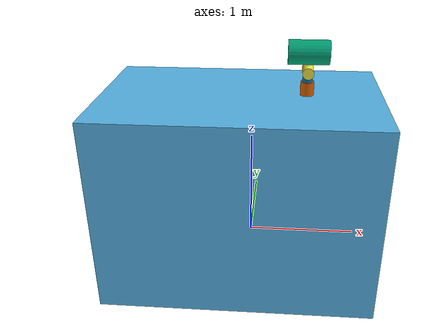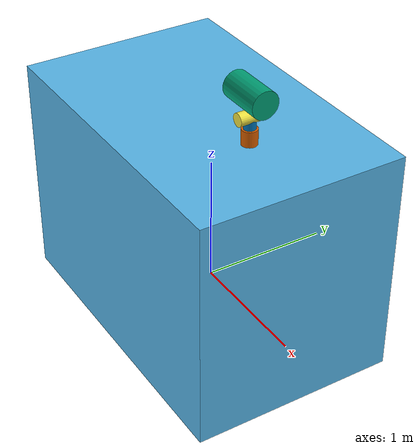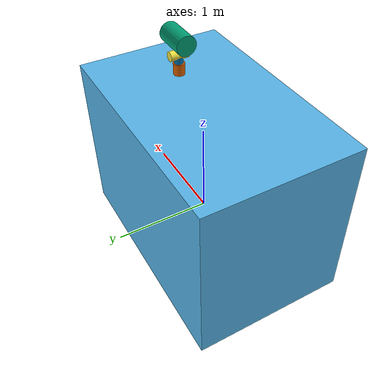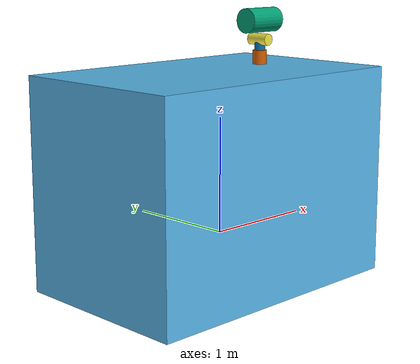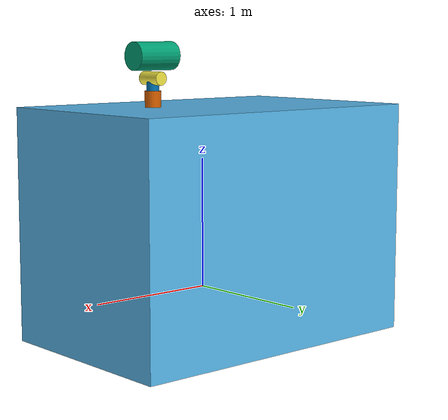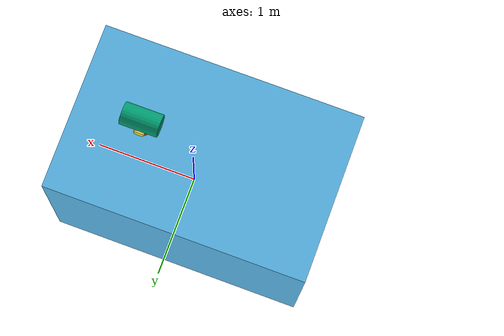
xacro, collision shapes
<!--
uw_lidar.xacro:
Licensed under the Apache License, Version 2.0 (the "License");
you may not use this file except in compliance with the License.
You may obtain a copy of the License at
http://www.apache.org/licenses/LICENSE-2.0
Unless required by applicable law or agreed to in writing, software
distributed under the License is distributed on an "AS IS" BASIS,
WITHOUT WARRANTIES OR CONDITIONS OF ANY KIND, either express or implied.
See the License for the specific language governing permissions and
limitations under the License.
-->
<?xml version="1.0"?>

<robot xmlns:xacro="http://www.ros.org/wiki/xacro" name="uw_lidar">
  <xacro:arg name="inertial_reference_frame" default="world"/>
  <xacro:include filename="$(find nps_uw_sensors_gazebo)/urdf/uw_lidar.xacro"/>

  <link name="robot_base_link"/>

  <link name="robot_link">
    <inertial>
      <origin xyz="0 0 0" rpy="0 0 0"/>
      <mass value="200"/>
      <inertia
        ixx="96.67" ixy="0.0" ixz="0.0"
        iyy="158.17" iyz="0.0"
        izz="146.83"/>
    </inertial>
    <visual>
      <geometry>
        <mesh filename="package://nps_uw_sensors_gazebo/meshes/eNOVUS.dae"/>
      </geometry>
      <origin xyz="0 0 -0.4" rpy="0 0 ${0.5*pi}"/>
    </visual>
    <collision>
      <geometry>
        <box size="2.5 1.6 1.8"/>
      </geometry>
      <origin xyz="-0.1 0 0.5" rpy="0 0 0"/>
    </collision>
  </link>

  <joint name="robot_base_joint" type="fixed">
    <origin xyz="0 0 0" rpy="0 0 0"/>
    <parent link="robot_base_link"/>
    <child link="robot_link"/>
  </joint>

  <xacro:uwl_macro namespace="uwl" parent_link="robot_base_link"
                   inertial_reference_frame="$(arg inertial_reference_frame)"
                   pan="0" tilt="0">
    <origin xyz="0.48 0 1.41" rpy="0 0 ${pi/2}"/>
  </xacro:uwl_macro>

  <!-- Turn gravity (off) for now so that the (unpowered) robot doesn't sink like
       a rock.  Can remove this once the neutral buoyancy issue (#4) is resolved -->
  <gazebo reference="robot_link">
    <turnGravityOff>true</turnGravityOff>
  </gazebo>
  <gazebo reference="uwl/uwl_link">
    <turnGravityOff>true</turnGravityOff>
  </gazebo>
  <gazebo reference="uwl/uwl_mount_tray_link">
    <turnGravityOff>true</turnGravityOff>
  </gazebo>
  <gazebo reference="uwl/uwl_mount_swivel_link">
    <turnGravityOff>true</turnGravityOff>
  </gazebo>
  <gazebo reference="uwl/uwl_mount_base_link">
    <turnGravityOff>true</turnGravityOff>
  </gazebo>
  <gazebo reference="uwl/uwl_sensor_link">
    <turnGravityOff>true</turnGravityOff>
  </gazebo>

</robot>

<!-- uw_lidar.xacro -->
<!-- Xacro macros for generating underwater lidar URDF model -->
<robot xmlns:xacro="http://www.ros.org/wiki/xacro">

  <!-- Generates a tiny "no-collision" cylinder for incorporation into a link
       that we do not want to collide with anything (e.g., individual DVL sonars) -->
  <xacro:macro name="no_collision">
    <visual>
      <geometry>
        <cylinder length="${0.01}" radius="${0.01}"/>
      </geometry>
      <origin xyz="0 0 0" rpy="0 0 0"/>
    </visual>
    <collision>
      <geometry>
        <cylinder length="${0.000001}" radius="${0.000001}"/>
      </geometry>
      <origin xyz="0 0 0" rpy="0 0 0"/>
    </collision>
  </xacro:macro>

  <!-- Generates an Underwater Lidar model and attaches it to a parent link
       Sensor parameters align with those in the 3D at Depth SL3 datasheet -->
  <xacro:macro name="uwl_macro" params="namespace parent_link *origin pan tilt inertial_reference_frame">
    <xacro:uw_lidar_plugin_macro
      namespace="${namespace}"
      suffix=""
      parent_link="${parent_link}"
      reference_frame="${inertial_reference_frame}"
      pan="${pan}"
      tilt="${tilt}" >
      <xacro:insert_block name="origin"/>
    </xacro:uw_lidar_plugin_macro>
  </xacro:macro>

  <!-- Generates a Lidar sensor -->
  <xacro:macro name="uw_lidar_sensor" params="namespace suffix update_rate reference_frame">
    <link name="${namespace}/uwl${suffix}_sensor_link">
      <inertial>
        <mass value="0.001"/>
        <origin xyz="0 0 0" rpy="0 0 0"/>
        <inertia ixx="0.000000017" ixy="0" ixz="0" iyy="0.000000017" iyz="0" izz="0.000000017"/>
      </inertial>
      <xacro:no_collision/>
    </link>

    <joint name="${namespace}/uwl${suffix}_sensor_joint" type="fixed">
      <origin xyz="0.014 -0.1825 0.168" rpy="0 0 -${pi/2}"/>
      <parent link="${namespace}/uwl${suffix}_link"/>
      <child link="${namespace}/uwl${suffix}_sensor_link"/>
    </joint>

   <gazebo reference="${namespace}/uwl${suffix}_sensor_link">
     <sensor name="uw_lidar_sensor" type="gpu_ray">
       <pose>0 0 0 0 0 0</pose>
       <update_rate>${update_rate}</update_rate>
       <visualize>true</visualize>
       <always_on>true</always_on>

       <plugin name="pulse_lidar_sensing" filename="libgazebo_ros_velodyne_gpu_laser.so">
           <topicName>nps_uwl_points</topicName>
           <static_reference_frame>${reference_frame}</static_reference_frame>
           <min_intensity>0</min_intensity>
           <min_range>1</min_range>
           <max_range>20</max_range>
           <gaussianNoise>0.05</gaussianNoise>
       </plugin>
       <ray>
         <!-- The scan element contains the horizontal and vertical beams.-->
         <scan>
           <!-- The horizontal beams -->
           <horizontal>
             <!-- # of horizontal beams simulates a spinning beam -->
             <samples>1450</samples>
             <resolution>0.1</resolution>
             <!-- Minimum angle in radians -->
             <min_angle>${-pi/12}</min_angle>
             <!-- Maximum angle in radians -->
             <max_angle>${pi/12}</max_angle>
           </horizontal>

           <vertical>
             <samples>1450</samples>
             <resolution>0.1</resolution>
             <min_angle>${-pi/12}</min_angle>
             <max_angle>${pi/12}</max_angle>
           </vertical>
         </scan>

         <!-- Range defines characteristics of an individual beam -->
         <range>
           <!-- Minimum distance of the beam in meters-->
           <min>1</min>
           <!-- Maximum distance of the beam in meters.
                Should be between 2 and 45 meters, depending on visibility. -->
           <max>20</max>
           <!-- Linear resolution of each lidar ray. This _may_ refer to depth resolution. -->
           <resolution>0.1</resolution>
         </range>
         <noise>
           <!-- Use gaussian noise -->
           <type>gaussian</type>
           <mean>0.0</mean>
           <stddev>0.05</stddev>
         </noise>
       </ray>
     </sensor>
   </gazebo>
  </xacro:macro>

  <!-- Generates the uw_lidar model with stand and motion control plugin -->
  <xacro:macro name="uw_lidar_plugin_macro"
    params="namespace suffix parent_link *origin pan tilt reference_frame">

    <link name="${namespace}/uwl${suffix}_link">
      <inertial>
        <mass value="20.9"/>
        <origin xyz="0 0 0.163" rpy="0 0 0"/>
        <inertia ixx="0.27709917" ixy="0" ixz="0" iyy="0.11521125" iyz="0" izz="0.27709917" />
      </inertial>
      <visual>
        <geometry>
          <mesh filename="package://nps_uw_sensors_gazebo/models/3dad_sl3/mesh/3dad_sl3.dae"/>
        </geometry>
        <origin xyz="0 0 0.163" rpy="0 0 0"/>
      </visual>
      <collision>
       <geometry>
         <cylinder length="0.355" radius="0.105" />
       </geometry>
       <origin xyz="0 0 0.163" rpy="0 ${0.5*pi} ${0.5*pi}"/>
      </collision>
    </link>

    <link name="${namespace}/uwl${suffix}_mount_tray_link">
      <inertial>
        <mass value="3.29"/>
        <origin xyz="0 0 0" rpy="0 ${0.5*pi} 0"/>
        <inertia ixx="0.01302291666" ixy="0" ixz="0" iyy="0.01302291666" iyz="0" izz="0.0041125" />
      </inertial>
      <visual>
        <geometry>
          <mesh filename="package://nps_uw_sensors_gazebo/models/3dad_sl3/mesh/uw_lidar_mount_tray.dae"/>
        </geometry>
        <origin xyz="0 0.034 0.163" rpy="0 0 0"/>
      </visual>
      <collision>
       <geometry>
         <cylinder length="0.2" radius="0.05" />
       </geometry>
       <origin xyz="0 0 0" rpy="0 ${0.5*pi} 0"/>
      </collision>
    </link>

    <link name="${namespace}/uwl${suffix}_mount_swivel_link">
      <inertial>
        <mass value="1"/>
        <origin xyz="0 0 0.0375" rpy="0 0 0"/>
        <inertia ixx="0.000975" ixy="0" ixz="0" iyy="0.000975" iyz="0" izz="0.0010125" />
      </inertial>
      <visual>
        <geometry>
          <mesh filename="package://nps_uw_sensors_gazebo/models/3dad_sl3/mesh/uw_lidar_mount_swivel.dae"/>
        </geometry>
        <origin xyz="0 0.034 0.255" rpy="0 0 0"/>
      </visual>
      <collision>
       <geometry>
         <cylinder length="0.075" radius="0.045" />
       </geometry>
       <origin xyz="0 0 0.0375" rpy="0 0 0"/>
      </collision>
    </link>

    <link name="${namespace}/uwl${suffix}_mount_base_link">
      <inertial>
        <mass value="2.84"/>
        <origin xyz="0 0 0.06" rpy="0 0 0"/>
        <inertia ixx="0.005964" ixy="0" ixz="0" iyy="0.005964" iyz="0" izz="0.005112" />
      </inertial>
      <visual>
        <geometry>
          <mesh filename="package://nps_uw_sensors_gazebo/models/3dad_sl3/mesh/uw_lidar_mount_base.dae"/>
        </geometry>
        <origin xyz="0 0.034 0.375" rpy="0 0 0"/>
      </visual>
      <collision>
       <geometry>
         <cylinder length="0.12" radius="0.06" />
       </geometry>
       <origin xyz="0 0 0.06" rpy="0 0 0"/>
      </collision>
    </link>

    <joint name="${namespace}/uwl_tray_lidar_joint" type="fixed">
      <origin xyz="0 0 0" rpy="0 0 0"/>
      <parent link="${namespace}/uwl${suffix}_mount_tray_link"/>
      <child link="${namespace}/uwl${suffix}_link"/>
    </joint>

    <joint name="${namespace}/uwl_swivel_tray_joint" type="revolute">
      <origin xyz="0 0 0.092" rpy="0 0 0"/>
      <parent link="${namespace}/uwl${suffix}_mount_swivel_link"/>
      <child link="${namespace}/uwl${suffix}_mount_tray_link"/>
      <limit upper="${pi/12}" lower="-${pi/12}" effort="100" velocity="100"/>
      <axis xyz="1 0 0"/>
    </joint>

    <joint name="${namespace}/uwl_base_swivel_joint" type="revolute">
      <origin xyz="0 0 0.12" rpy="0 0 0"/>
      <parent link="${namespace}/uwl${suffix}_mount_base_link"/>
      <child link="${namespace}/uwl${suffix}_mount_swivel_link"/>
      <limit upper="${(35*pi)/36}" lower="-${(35*pi)/36}" effort="100" velocity="100"/>
      <axis xyz="0 0 1"/>
    </joint>

    <joint name="${namespace}/uwl_base_joint" type="fixed">
      <xacro:insert_block name="origin"/>
      <parent link="${parent_link}"/>
      <child link="${namespace}/uwl${suffix}_mount_base_link"/>
    </joint>

    <xacro:uw_lidar_sensor
      namespace="${namespace}" suffix=""
      update_rate="40" reference_frame="${reference_frame}">
    </xacro:uw_lidar_sensor>

    <gazebo>
       <plugin name="pulse_lidar_control" filename="libgazebo_ros_pulse_lidar_plugin.so" >
        <robot_namespace>${namespace}</robot_namespace>
         <pan_position>${pan}</pan_position>
         <tilt_position>${tilt}</tilt_position>
       </plugin>
    </gazebo>
  </xacro:macro>
</robot>
